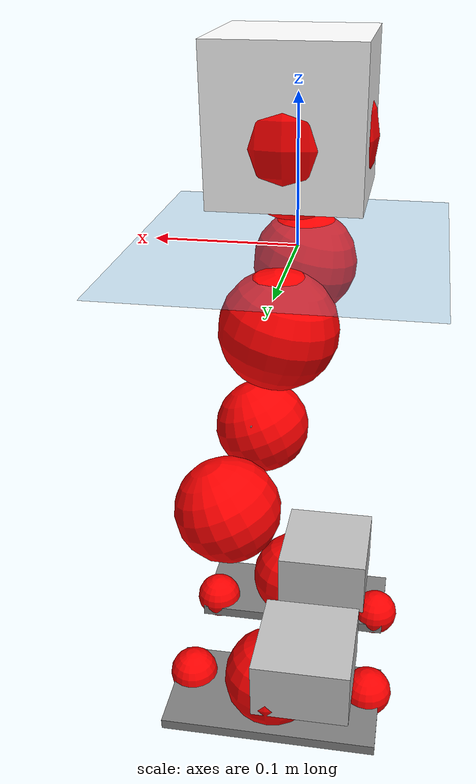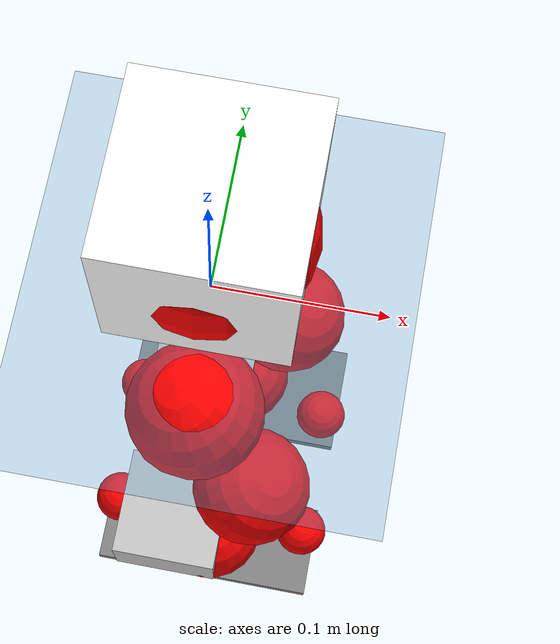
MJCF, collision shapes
<mujoco model="pi_12dof_release_v1">
  <compiler angle="radian" assetdir="assets" balanceinertia="true" inertiafromgeom="false"/>

  <option timestep="0.005" density="1.2" viscosity="2e-05"/>

  <size nkey="1"/>

  <visual>
    <quality shadowsize="8192"/>
    <map shadowclip="0.5"/>
  </visual>

  <default>
    <default class="/">
      <joint armature="0.01" damping="0.01" frictionloss="0.01"/>
      <geom contype="0" conaffinity="0" group="1" solref="-1000 -80"/>
      <site size="0.01 0.005 0.005" group="5"/>
      <general forcelimited="true" biastype="affine" gainprm="20" biasprm="0 -20 -0.5"/>
      <default class="foot">
        <geom size="0.0845 0.036 0.005" type="box" condim="6" group="4" priority="1" friction="0.9 0.2 0.2" solimp="0.015 1 0.005"/>
      </default>
      <default class="reward_collision_sphere">
        <geom group="5" rgba="1 0 0 1"/>
      </default>
    </default>
  </default>

  <asset>
    <texture type="skybox" colorspace="auto" name="//unnamed_texture_0" builtin="gradient" rgb1="0.95 0.95 0.95" rgb2="0.95 0.95 0.95" width="100" height="600"/>
    <texture type="2d" colorspace="auto" name="texplane" builtin="checker" rgb1="0.345 0.575 0.748" rgb2="0.345 0.575 0.748" markrgb="1 1 1" width="512" height="512"/>
    <material name="MatPlane" class="/" texture="texplane" texuniform="true" texrepeat="2 2" specular="0.9"/>
    <mesh name="baselink_1" class="/" file="baselink_1.STL"/>
    <mesh name="r_hip_pitch_link" class="/" file="r_hip_pitch_link.STL"/>
    <mesh name="r_hip_roll_link" class="/" file="r_hip_roll_link.STL"/>
    <mesh name="r_thigh_link" class="/" file="r_thigh_link.STL"/>
    <mesh name="r_calf_link" class="/" file="r_calf_link.STL"/>
    <mesh name="r_ankle_pitch_link" class="/" file="r_ankle_pitch_link.STL"/>
    <mesh name="r_ankle_roll_link" class="/" file="r_ankle_roll_link.STL"/>
    <mesh name="l_hip_pitch_link" class="/" file="l_hip_pitch_link.STL"/>
    <mesh name="l_hip_roll_link" class="/" file="l_hip_roll_link.STL"/>
    <mesh name="l_thigh_link" class="/" file="l_thigh_link.STL"/>
    <mesh name="l_calf_link" class="/" file="l_calf_link.STL"/>
    <mesh name="l_ankle_pitch_link" class="/" file="l_ankle_pitch_link.STL"/>
    <mesh name="l_ankle_roll_link" class="/" file="l_ankle_roll_link.STL"/>
  </asset>

  <worldbody>
    <geom name="floor" class="/" size="100 100 0.125" type="plane" group="0" material="MatPlane"/>
    <light name="toplight_shadow" class="/" pos="0 0 5" dir="0.0990148 0.0990148 -0.990148" type="directional" ambient="0.04 0.04 0.04" diffuse="0.55 0.55 0.55" specular="0.12 0.12 0.12"/>
    <light name="toplight_fill" class="/" pos="0 0 5" dir="0.0990148 0.0990148 -0.990148" type="directional" castshadow="false" ambient="0.04 0.04 0.04" diffuse="0.3 0.3 0.3" specular="0.08 0.08 0.08"/>
    <body name="trunk" pos="0.0022507 0.000319646 -0.0014397" quat="0.999999 -0.000405699 0.000752674 -0.000994967">
      <inertial pos="0.00010404 0.000466607 0.044737" quat="0.69397 0.0138016 0.00689383 0.719839" mass="2.06973" diaginertia="0.0159902 0.00272301 0.00641293"/>
      <joint name="//unnamed_joint_0" type="free"/>
      <geom name="//unnamed_geom_1" class="/" type="mesh" density="0" rgba="1 1 1 1" mesh="baselink_1"/>
      <geom name="//unnamed_geom_2" class="/" size="0.0495446 0.0495446 0.0495446" pos="0 0 0.0869397" type="box" rgba="1 1 1 1"/>
      <geom name="//unnamed_geom_3" class="reward_collision_sphere" size="0.0544991" pos="0 0 0.0760722"/>
      <site name="imu" class="/" pos="0.00258842 0.00962979 0.0134797" size="0.00990893"/>
      <camera name="track" class="/" pos="0 -1.57008 0" quat="0.707107 0.707107 0 0" mode="trackcom"/>
      <camera name="ego_camera" class="/" pos="0.082567 0 0.195614" quat="-0.5 -0.5 0.5 0.5"/>
      <body name="r_hip_pitch_link" pos="-0.000979595 -0.0171656 -0.0344128" quat="0.992177 0.000446475 -0.124838 -0.000303754">
        <inertial pos="0.000281595 -0.0466937 0.000434153" quat="-0.0167681 0.704392 -0.0263365 0.709124" mass="0.34983" diaginertia="0.000178503 2.95657e-05 0.000126074"/>
        <joint name="r_hip_pitch_joint" class="/" pos="0 0 0" axis="0.00904734 -0.999922 -0.00855339" range="-1.78246 1.22977" armature="0.0098883" damping="0.0265855" frictionloss="0.0112434"/>
        <geom name="//unnamed_geom_4" class="/" type="mesh" density="0" rgba="0.75294 0.75294 0.75294 1" mesh="r_hip_pitch_link"/>
        <geom name="//unnamed_geom_5" class="/" size="0.000495446 0.000495446 0.000495446" type="box" rgba="0.75294 0.75294 0.75294 1"/>
        <body name="r_hip_roll_link" pos="0.00216889 -0.0447649 0.00202151" quat="0.999999 -0.00026006 -0.00102242 0.0009561">
          <inertial pos="0.00120829 -0.0024762 -0.0689559" quat="0.705926 -0.0790472 -0.082564 0.699001" mass="0.365949" diaginertia="0.000532741 7.97815e-05 0.000193151"/>
          <joint name="r_hip_roll_joint" class="/" pos="0 0 0" axis="-0.999914 0.0126024 -0.00349315" range="-0.110531 0.444282" armature="0.00949234" damping="0" frictionloss="0.0112883"/>
          <geom name="//unnamed_geom_6" class="/" type="mesh" density="0" rgba="0.75294 0.75294 0.75294 1" mesh="r_hip_roll_link"/>
          <geom name="//unnamed_geom_7" class="/" size="0.000495446 0.000495446 0.000495446" type="box" rgba="0.75294 0.75294 0.75294 1"/>
          <geom name="//unnamed_geom_8" class="reward_collision_sphere" size="0.0396357"/>
          <body name="r_thigh_link" pos="-0.00159744 -0.00239714 -0.0753421" quat="0.999999 -0.000569208 -0.000898118 -0.000308756">
            <inertial pos="-0.00254099 0.000162672 -0.0490394" quat="0.734781 0.678304 -0.000457525 0.000349611" mass="0.109469" diaginertia="0.000201819 2.98426e-05 8.99919e-05"/>
            <joint name="r_thigh_joint" class="/" pos="0 0 0" axis="0.000476174 0.000592513 -1" range="-0.35699 0.637516" armature="0.0089592" damping="0.00217339" frictionloss="0.00880901"/>
            <geom name="//unnamed_geom_9" class="/" type="mesh" density="0" rgba="0.75294 0.75294 0.75294 1" mesh="r_thigh_link"/>
            <geom name="//unnamed_geom_10" class="/" size="0.000495446 0.000495446 0.000495446" type="box" rgba="0.75294 0.75294 0.75294 1"/>
            <body name="r_calf_link" pos="-0.00139082 -0.00124735 -0.0792266" quat="0.947254 0.000498149 0.320482 -9.13632e-05">
              <inertial pos="0.00110879 -0.003577 -0.0764431" quat="0.999929 0.0104938 0.00305122 0.00484198" mass="0.783562" diaginertia="0.00536166 0.0010177 0.000250094"/>
              <joint name="r_calf_joint" class="/" pos="0 0 0" axis="-0.00919944 -0.999896 -0.0111497" range="-1.60224 0.664422" armature="0.0103552" damping="0.00420436" frictionloss="0.0112595"/>
              <geom name="//unnamed_geom_11" class="/" type="mesh" density="0" rgba="0.75294 0.75294 0.75294 1" mesh="r_calf_link"/>
              <geom name="//unnamed_geom_12" class="/" size="0.000495446 0.000495446 0.000495446" type="box" rgba="0.75294 0.75294 0.75294 1"/>
              <geom name="//unnamed_geom_13" class="reward_collision_sphere" size="0.0396357"/>
              <body name="r_ankle_pitch_link" pos="0.00125169 -0.00249819 -0.152189" quat="0.9801 9.64664e-05 -0.198506 -2.09478e-05">
                <inertial pos="0.00723618 9.23344e-05 0.000561562" quat="0.0107267 0.700958 -0.00372546 0.713112" mass="0.172748" diaginertia="0.000491903 6.47676e-05 0.000184324"/>
                <joint name="r_ankle_pitch_joint" class="/" pos="0 0 0" axis="0.00938592 -0.999926 -0.00772725" range="-1.272 0.507039" armature="0.00978299" damping="0" frictionloss="0.0109267"/>
                <geom name="//unnamed_geom_14" class="/" type="mesh" density="0" rgba="0.75294 0.75294 0.75294 1" mesh="r_ankle_pitch_link"/>
                <geom name="//unnamed_geom_15" class="/" size="0.0386448 0.0396357 0.0247723" type="box" rgba="0.75294 0.75294 0.75294 1"/>
                <body name="r_ankle_roll_link" pos="0.083414 -0.000470483 -0.000546822" quat="1 -0.000119345 -6.42005e-05 -6.28266e-05">
                  <inertial pos="-0.026644 -0.000350473 -0.0155187" quat="0.570734 0.425788 0.433274 0.552486" mass="0.504488" diaginertia="0.00183188 0.000308149 0.000415973"/>
                  <joint name="r_ankle_roll_joint" class="/" pos="0 0 0" axis="-0.999917 0.00743311 -0.010477" stiffness="0.00501497" range="-0.202489 0.144599" armature="0.0112737" damping="0.0144229" frictionloss="0.0097842"/>
                  <geom name="//unnamed_geom_16" class="/" type="mesh" density="0" rgba="0.75294 0.75294 0.75294 1" mesh="r_ankle_roll_link"/>
                  <geom name="//unnamed_geom_17" class="/" type="mesh" rgba="0.75294 0.75294 0.75294 1" mesh="r_ankle_roll_link"/>
                  <geom name="right_foot" class="foot" size="0.0834418 0.0341764 0.00450403" pos="-0.0561456 0 -0.0478168"/>
                  <geom name="//unnamed_geom_19" class="reward_collision_sphere" size="0.0396357" pos="-0.0550447 0 -0.0217349"/>
                  <geom name="//unnamed_geom_20" class="reward_collision_sphere" size="0.0198179" pos="0.0165134 0.0157008 -0.0434698"/>
                  <geom name="//unnamed_geom_21" class="reward_collision_sphere" size="0.0198179" pos="-0.132107 0.0157008 -0.0434698"/>
                  <site name="right_foot" class="foot" pos="-0.0561456 0 -0.0478168" size="0.00990893"/>
                </body>
              </body>
            </body>
          </body>
        </body>
      </body>
      <body name="l_hip_pitch_link" pos="0.000852742 0.0189393 -0.0378512" quat="0.992186 -1.1196e-05 -0.124765 4.13053e-05">
        <inertial pos="0.00160012 0.044831 -0.00286841" quat="-0.0291894 0.709336 0.029392 0.703652" mass="0.386985" diaginertia="0.00020366 3.07947e-05 0.000156041"/>
        <joint name="l_hip_pitch_joint" class="/" pos="0 0 0" axis="0.0069445 0.999918 0.0107624" range="-1.23889 1.74524" armature="0.009779" damping="0.0183242" frictionloss="0.00974473"/>
        <geom name="//unnamed_geom_22" class="/" type="mesh" density="0" rgba="0.75294 0.75294 0.75294 1" mesh="l_hip_pitch_link"/>
        <geom name="//unnamed_geom_23" class="/" size="0.000495446 0.000495446 0.000495446" type="box" rgba="0.75294 0.75294 0.75294 1"/>
        <body name="l_hip_roll_link" pos="0.000683715 0.0414046 0.00309222" quat="1 0.000290855 -0.000261191 -0.000255048">
          <inertial pos="-0.0018776 -0.000132823 -0.0673537" quat="0.700534 -0.0744244 -0.0770487 0.705533" mass="0.38786" diaginertia="0.000537433 8.12575e-05 0.000199759"/>
          <joint name="l_hip_roll_joint" class="/" pos="0 0 0" axis="-0.999993 0.00108033 -0.00349108" range="-0.480364 0.172913" armature="0.00949993" damping="0.00509627" frictionloss="0.00973727"/>
          <geom name="//unnamed_geom_24" class="/" type="mesh" density="0" rgba="0.75294 0.75294 0.75294 1" mesh="l_hip_roll_link"/>
          <geom name="//unnamed_geom_25" class="/" size="0.000495446 0.000495446 0.000495446" type="box" rgba="0.75294 0.75294 0.75294 1"/>
          <geom name="//unnamed_geom_26" class="reward_collision_sphere" size="0.0396357"/>
          <body name="l_thigh_link" pos="0.000640504 -0.000177968 -0.0773732" quat="1 0.000365169 -7.34927e-05 -0.000167999">
            <inertial pos="0.000113658 0.00100483 -0.051442" quat="0.68193 0.731415 -0.00180985 3.20037e-05" mass="0.109826" diaginertia="0.00019772 2.82746e-05 8.54475e-05"/>
            <joint name="l_thigh_joint" class="/" pos="0 0 0" axis="0.0024938 -0.00351548 -0.999991" stiffness="0.00492553" range="-0.596914 0.350231" armature="0.0106574" damping="0" frictionloss="0.0107968"/>
            <geom name="//unnamed_geom_27" class="/" type="mesh" density="0" rgba="0.75294 0.75294 0.75294 1" mesh="l_thigh_link"/>
            <geom name="//unnamed_geom_28" class="/" size="0.000495446 0.000495446 0.000495446" type="box" rgba="0.75294 0.75294 0.75294 1"/>
            <body name="l_calf_link" pos="0.000416155 -0.0014437 -0.0755826" quat="0.9473 0.00018664 0.320348 0.00060347">
              <inertial pos="0.00288475 0.00492445 -0.07825" quat="0.999908 -0.000421636 -0.0125655 0.00514442" mass="0.790387" diaginertia="0.00563127 0.00103412 0.000265449"/>
              <joint name="l_calf_joint" class="/" pos="0 0 0" axis="0.00445279 0.999966 0.00690212" range="-0.628942 1.61065" armature="0.00983589" damping="0.0100758" frictionloss="0.0085303"/>
              <geom name="//unnamed_geom_29" class="/" type="mesh" density="0" rgba="0.75294 0.75294 0.75294 1" mesh="l_calf_link"/>
              <geom name="//unnamed_geom_30" class="/" size="0.000495446 0.000495446 0.000495446" type="box" rgba="0.75294 0.75294 0.75294 1"/>
              <geom name="//unnamed_geom_31" class="reward_collision_sphere" size="0.0396357"/>
              <body name="l_ankle_pitch_link" pos="0.000308385 0.00120588 -0.154308" quat="0.980066 5.77005e-05 -0.198671 5.21516e-05">
                <inertial pos="0.00650398 -0.000810916 -0.000283565" quat="-0.000183371 0.707305 0.00283414 0.706903" mass="0.164936" diaginertia="0.00050329 6.80297e-05 0.000180651"/>
                <joint name="l_ankle_pitch_joint" class="/" pos="0 0 0" axis="-0.00253595 0.999995 -0.00183755" range="-0.503766 1.28369" armature="0.00982329" damping="0.00644635" frictionloss="0.0104997"/>
                <geom name="//unnamed_geom_32" class="/" type="mesh" density="0" rgba="0.75294 0.75294 0.75294 1" mesh="l_ankle_pitch_link"/>
                <geom name="//unnamed_geom_33" class="/" size="0.0386448 0.0396357 0.0247723" type="box" rgba="0.75294 0.75294 0.75294 1"/>
                <body name="l_ankle_roll_link" pos="0.0820806 0.00087365 0.00168925" quat="1 -5.65108e-05 0.00016755 -0.000426808">
                  <inertial pos="-0.0294928 -0.000829741 -0.0162125" quat="0.559204 0.423244 0.439775 0.561028" mass="0.508919" diaginertia="0.00185182 0.000310779 0.00044616"/>
                  <joint name="l_ankle_roll_joint" class="/" pos="0 0 0" axis="-0.999926 0.0120241 -0.00197779" range="-0.146566 0.180256" armature="0.00980247" damping="0.0236653" frictionloss="0.00948808"/>
                  <geom name="//unnamed_geom_34" class="/" type="mesh" density="0" rgba="0.75294 0.75294 0.75294 1" mesh="l_ankle_roll_link"/>
                  <geom name="//unnamed_geom_35" class="/" type="mesh" rgba="0.75294 0.75294 0.75294 1" mesh="l_ankle_roll_link"/>
                  <geom name="left_foot" class="foot" size="0.0860092 0.0414128 0.00438567" pos="-0.0561456 0 -0.0478168"/>
                  <geom name="//unnamed_geom_37" class="reward_collision_sphere" size="0.0396357" pos="-0.0550447 0 -0.0217349"/>
                  <geom name="//unnamed_geom_38" class="reward_collision_sphere" size="0.0198179" pos="0.0165134 -0.0157008 -0.0434698"/>
                  <geom name="//unnamed_geom_39" class="reward_collision_sphere" size="0.0198179" pos="-0.132107 -0.0157008 -0.0434698"/>
                  <site name="left_foot" class="foot" pos="-0.0561456 0 -0.0478168" size="0.00990893"/>
                </body>
              </body>
            </body>
          </body>
        </body>
      </body>
    </body>
  </worldbody>

  <contact>
    <pair class="/" geom1="floor" geom2="right_foot" name="//unnamed_contact_1"/>
    <pair class="/" geom1="floor" geom2="left_foot" name="//unnamed_contact_0"/>
  </contact>

  <actuator>
    <general name="r_hip_pitch_joint" class="/" joint="r_hip_pitch_joint" forcerange="-20.4011 20.4011" gainprm="20.0214" biasprm="0 -20.0214 -0.515858"/>
    <general name="r_hip_roll_joint" class="/" joint="r_hip_roll_joint" forcerange="-22.5758 22.5758" gainprm="20.0214" biasprm="0 -20.0214 -0.515858"/>
    <general name="r_thigh_joint" class="/" joint="r_thigh_joint" forcerange="-21.6552 21.6552" gainprm="20.0214" biasprm="0 -20.0214 -0.515858"/>
    <general name="r_calf_joint" class="/" joint="r_calf_joint" forcerange="-22.6353 22.6353" gainprm="20.0214" biasprm="0 -20.0214 -0.515858"/>
    <general name="r_ankle_pitch_joint" class="/" joint="r_ankle_pitch_joint" forcerange="-20.014 20.014" gainprm="20.0214" biasprm="0 -20.0214 -0.515858"/>
    <general name="r_ankle_roll_joint" class="/" joint="r_ankle_roll_joint" forcerange="-18.7043 18.7043" gainprm="20.0214" biasprm="0 -20.0214 -0.515858"/>
    <general name="l_hip_pitch_joint" class="/" joint="l_hip_pitch_joint" forcerange="-20.567 20.567" gainprm="20.0214" biasprm="0 -20.0214 -0.515858"/>
    <general name="l_hip_roll_joint" class="/" joint="l_hip_roll_joint" forcerange="-19.4042 19.4042" gainprm="20.0214" biasprm="0 -20.0214 -0.515858"/>
    <general name="l_thigh_joint" class="/" joint="l_thigh_joint" forcerange="-21.5594 21.5594" gainprm="20.0214" biasprm="0 -20.0214 -0.515858"/>
    <general name="l_calf_joint" class="/" joint="l_calf_joint" forcerange="-20.5368 20.5368" gainprm="20.0214" biasprm="0 -20.0214 -0.515858"/>
    <general name="l_ankle_pitch_joint" class="/" joint="l_ankle_pitch_joint" forcerange="-22.1688 22.1688" gainprm="20.0214" biasprm="0 -20.0214 -0.515858"/>
    <general name="l_ankle_roll_joint" class="/" joint="l_ankle_roll_joint" forcerange="-20.4535 20.4535" gainprm="20.0214" biasprm="0 -20.0214 -0.515858"/>
  </actuator>

  <sensor>
    <gyro site="imu" name="imu_angular_velocity"/>
    <velocimeter site="imu" name="imu_linear_velocity"/>
    <framelinvel objtype="site" objname="left_foot" name="left_foot_global_linear_velocity"/>
    <framelinvel objtype="site" objname="right_foot" name="right_foot_global_linear_velocity"/>
  </sensor>

  <keyframe>
    <key name="home" qpos="0 0 0.291 1 0 0 0 0.4 0 0 -0.8 0.4 0 -0.4 0 0 0.8 -0.4 0"/>
  </keyframe>
</mujoco>
